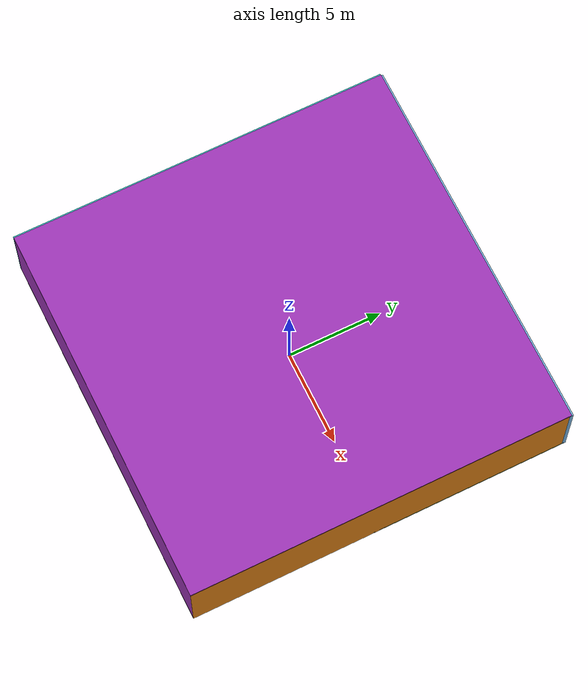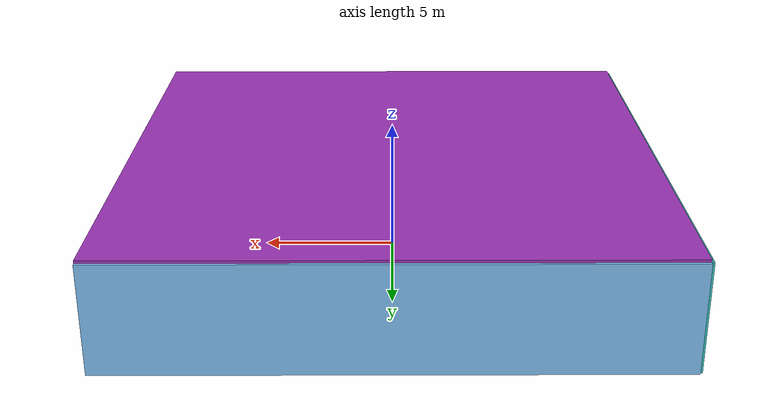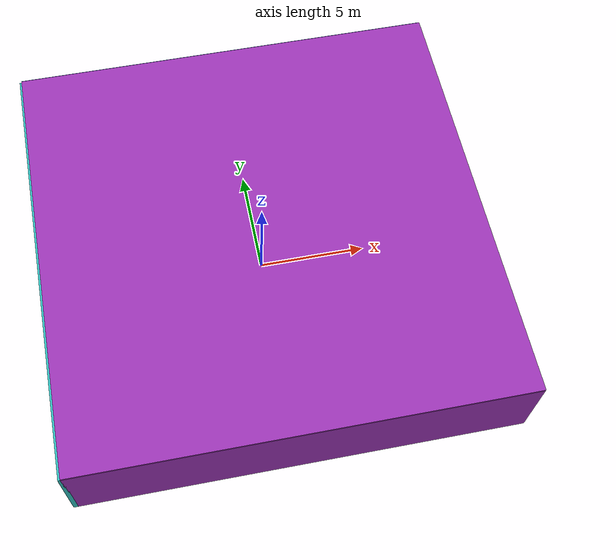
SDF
<sdf version="1.4">
 <world name="default">
  <physics type="ode">
   <max_step_size>0.001</max_step_size>
   <real_time_factor>1</real_time_factor>
   <real_time_update_rate>1000</real_time_update_rate>
   <gravity>0 0 -9.8</gravity>
  </physics>
  <scene><ambient>0.4 0.4 0.4 1</ambient><background>0.7 0.7 0.7 1</background><shadows>1</shadows></scene>
  <model name="Surrounding">
   <static>1</static>
   <link name="Ceiling">
    <collision name="Ceiling_Collision"><geometry><box><size>20 20 0.1</size></box></geometry></collision>
    <visual name="Ceiling_Visual">
     <geometry><box><size>20 20 0.1</size></box></geometry>
     <material>
      <script><uri>file://media/materials/scripts/gazebo.material</uri><name>Gazebo/Purple</name></script>
     </material>
    </visual>
    <pose>0 0 4.05 0 0 0</pose>
   </link>
   <link name="Wall_South">
    <collision name="Wall_South_Collision">
     <geometry><box><size>20 0 4</size></box></geometry>
     <pose>0 0 2 0 -0 0</pose>
    </collision>
    <visual name="Wall_South_Visual">
     <pose>0 0 2 0 -0 0</pose>
     <geometry><box><size>20 0 4</size></box></geometry>
     <material>
      <script><uri>file://media/materials/scripts/gazebo.material</uri><name>Gazebo/PurpleGlow</name></script>
     </material>
    </visual>
    <velocity_decay><linear>0</linear><angular>0</angular></velocity_decay>
    <pose>0 -10 0 0 -0 0</pose>
   </link>
   <link name="Wall_East">
    <collision name="Wall_21_Collision">
     <geometry><box><size>20 0 4</size></box></geometry>
     <pose>0 0 2 0 -0 0</pose>
    </collision>
    <visual name="Wall_21_Visual">
     <pose>0 0 2 0 -0 0</pose>
     <geometry><box><size>20 0 4</size></box></geometry>
     <material>
      <script><uri>file://media/materials/scripts/gazebo.material</uri><name>Gazebo/Orange</name></script>
     </material>
    </visual>
    <velocity_decay><linear>0</linear><angular>0</angular></velocity_decay>
    <pose>10 0 0 0 -0 1.5708</pose>
   </link>
   <link name="Wall_North">
    <collision name="Wall_22_Collision">
     <geometry><box><size>20 0.2 4</size></box></geometry>
     <pose>0 0 2 0 -0 0</pose>
    </collision>
    <visual name="Wall_22_Visual">
     <pose>0 0 2 0 -0 0</pose>
     <geometry><box><size>20 0.2 4</size></box></geometry>
     <material>
      <script><uri>file://media/materials/scripts/gazebo.material</uri><name>Gazebo/SkyBlue</name></script>
     </material>
    </visual>
    <velocity_decay><linear>0</linear><angular>0</angular></velocity_decay>
    <pose>0 10 0 0 -0 0</pose>
   </link>
   <link name="Wall_West">
    <collision name="Wall_23_Collision">
     <geometry><box><size>20 0.2 4</size></box></geometry>
     <pose>0 0 2 0 -0 0</pose>
    </collision>
    <visual name="Wall_23_Visual">
     <pose>0 0 2 0 -0 0</pose>
     <geometry><box><size>20 0.2 4</size></box></geometry>
     <material>
      <script><uri>file://media/materials/scripts/gazebo.material</uri><name>Gazebo/TurquoiseGlow</name></script>
     </material>
    </visual>
    <velocity_decay><linear>0</linear><angular>0</angular></velocity_decay>
    <pose>-10 0 0 0 0 -1.5708</pose>
   </link>
   <link name="Ground_link">
    <collision name="collision">
     <pose>0 0 .05 0 -0 0</pose>
     <geometry><box><size>20 20 0.1</size></box></geometry>
    </collision>
    <visual name="visual">
     <pose>0 0 .05 0 -0 0</pose>
     <geometry><box><size>20 20 0.1</size></box></geometry>
     <material>
      <script><uri>file://media/materials/scripts/gazebo.material</uri><name>Gazebo/GreenTransparent</name></script>
     </material>
    </visual>
   </link>
   <static>1</static>
  </model>
  <spherical_coordinates>
   <surface_model>EARTH_WGS84</surface_model>
   <latitude_deg>0</latitude_deg>
   <longitude_deg>0</longitude_deg>
   <elevation>0</elevation>
   <heading_deg>0</heading_deg>
  </spherical_coordinates>
  <light name="lightball_0" type="diffuse">
   <diffuse>0.8 0.8 0.8 1</diffuse>
   <specular>0.2 0.2 0.2 1</specular>
   <attenuation>
    <range>100</range>
    <constant>0.7</constant>
    <linear>0.01</linear>
    <quadratic>0.001</quadratic>
   </attenuation>
   <direction>-0.5 0.1 -0.9</direction>
   <pose>7.50874572396 2.40099869493 0.728731863525 0 0 0</pose>
  </light>
  <light name="lightball_1" type="diffuse">
   <diffuse>0.8 0.8 0.8 1</diffuse>
   <specular>0.2 0.2 0.2 1</specular>
   <attenuation>
    <range>100</range>
    <constant>0.7</constant>
    <linear>0.01</linear>
    <quadratic>0.001</quadratic>
   </attenuation>
   <direction>-0.5 0.1 -0.9</direction>
   <pose>8.42041786814 -1.06620378913 2.43018211893 0 0 0</pose>
  </light>
  <light name="lightball_2" type="diffuse">
   <diffuse>0.8 0.8 0.8 1</diffuse>
   <specular>0.2 0.2 0.2 1</specular>
   <attenuation>
    <range>100</range>
    <constant>0.7</constant>
    <linear>0.01</linear>
    <quadratic>0.001</quadratic>
   </attenuation>
   <direction>-0.5 0.1 -0.9</direction>
   <pose>6.03834614712 -9.11216477513 1.59048570381 0 0 0</pose>
  </light>
  <light name="lightball_3" type="diffuse">
   <diffuse>0.8 0.8 0.8 1</diffuse>
   <specular>0.2 0.2 0.2 1</specular>
   <attenuation>
    <range>100</range>
    <constant>0.7</constant>
    <linear>0.01</linear>
    <quadratic>0.001</quadratic>
   </attenuation>
   <direction>-0.5 0.1 -0.9</direction>
   <pose>3.33342826599 2.01490624117 0.673498242533 0 0 0</pose>
  </light>
  <light name="lightball_4" type="diffuse">
   <diffuse>0.8 0.8 0.8 1</diffuse>
   <specular>0.2 0.2 0.2 1</specular>
   <attenuation>
    <range>100</range>
    <constant>0.7</constant>
    <linear>0.01</linear>
    <quadratic>0.001</quadratic>
   </attenuation>
   <direction>-0.5 0.1 -0.9</direction>
   <pose>-9.49079962867 -9.10043592709 0.664721853616 0 0 0</pose>
  </light>
  <light name="lightball_5" type="diffuse">
   <diffuse>0.8 0.8 0.8 1</diffuse>
   <specular>0.2 0.2 0.2 1</specular>
   <attenuation>
    <range>100</range>
    <constant>0.7</constant>
    <linear>0.01</linear>
    <quadratic>0.001</quadratic>
   </attenuation>
   <direction>-0.5 0.1 -0.9</direction>
   <pose>-1.75243873136 7.11573759396 1.11462719228 0 0 0</pose>
  </light>
  <light name="lightball_6" type="diffuse">
   <diffuse>0.8 0.8 0.8 1</diffuse>
   <specular>0.2 0.2 0.2 1</specular>
   <attenuation>
    <range>100</range>
    <constant>0.7</constant>
    <linear>0.01</linear>
    <quadratic>0.001</quadratic>
   </attenuation>
   <direction>-0.5 0.1 -0.9</direction>
   <pose>9.09290145622 -3.73274689602 1.77305055254 0 0 0</pose>
  </light>
  <light name="lightball_7" type="diffuse">
   <diffuse>0.8 0.8 0.8 1</diffuse>
   <specular>0.2 0.2 0.2 1</specular>
   <attenuation>
    <range>100</range>
    <constant>0.7</constant>
    <linear>0.01</linear>
    <quadratic>0.001</quadratic>
   </attenuation>
   <direction>-0.5 0.1 -0.9</direction>
   <pose>2.9964271651 1.67166936596 1.52813414166 0 0 0</pose>
  </light>
  <light name="lightball_8" type="diffuse">
   <diffuse>0.8 0.8 0.8 1</diffuse>
   <specular>0.2 0.2 0.2 1</specular>
   <attenuation>
    <range>100</range>
    <constant>0.7</constant>
    <linear>0.01</linear>
    <quadratic>0.001</quadratic>
   </attenuation>
   <direction>-0.5 0.1 -0.9</direction>
   <pose>-4.99730765422 6.40093634501 1.6081948336 0 0 0</pose>
  </light>
  <light name="lightball_9" type="diffuse">
   <diffuse>0.8 0.8 0.8 1</diffuse>
   <specular>0.2 0.2 0.2 1</specular>
   <attenuation>
    <range>100</range>
    <constant>0.7</constant>
    <linear>0.01</linear>
    <quadratic>0.001</quadratic>
   </attenuation>
   <direction>-0.5 0.1 -0.9</direction>
   <pose>-6.43200339646 7.90157575689 2.41365954107 0 0 0</pose>
  </light>
  <include>
   <uri>model://robocup_3Dsim_goal</uri>
   <pose>-4.26099029629 -0.916659943168 0 0 0 2.27350653782</pose>
  </include>
  <include>
   <uri>model://textured_shapes</uri>
   <pose>-1.41119336106 -7.79148302675 0 0 0 2.42450619841</pose>
  </include>
  <include>
   <uri>model://construction_cone</uri>
   <pose>2.10149644347 -7.50829597998 0 0 0 0.834736895812</pose>
  </include>
  <include>
   <uri>model://textured_shapes</uri>
   <pose>4.46024216547 1.84658693866 0 0 0 0.475782125802</pose>
  </include>
  <include><uri>model://cabinet</uri><pose>8.1159412553 -7.70084988079 0 0 0 2.99718474323</pose></include>
  <include>
   <uri>model://construction_cone</uri>
   <pose>8.28956890083 4.37078909684 0 0 0 2.5389976283</pose>
  </include>
 </world>
</sdf>

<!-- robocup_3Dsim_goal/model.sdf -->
<sdf version="1.5">
  <model name="robocup_3d_goal">
    <static>true</static>
    <link name="left_post">
      <pose>0 1.05 0.45 0 0 0</pose>
      <collision name="collision">
        <geometry>
          <cylinder>
            <radius>0.05</radius>
            <length>0.9</length>
          </cylinder>
        </geometry>
      </collision>
      <visual name="visual">
        <geometry>
          <cylinder>
            <radius>0.05</radius>
            <length>0.9</length>
          </cylinder>
        </geometry>
        <material>
          <script>
            <uri>file://media/materials/scripts/gazebo.material</uri>
            <name>Gazebo/ZincYellow</name>
          </script>
        </material>
      </visual>
    </link>
    <link name="left_support_horiz_lower">
      <pose>0.30 1.05 0.01 0 0 0</pose>
      <collision name="collision">
        <geometry>
          <box>
            <size>0.50 0.02 0.02</size>
          </box>
        </geometry>
      </collision>
      <visual name="visual">
        <geometry>
          <box>
            <size>0.50 0.02 0.02</size>
          </box>
        </geometry>
        <material>
          <script>
            <uri>file://media/materials/scripts/gazebo.material</uri>
            <name>Gazebo/White</name>
          </script>
        </material>
      </visual>
    </link>
    <link name="left_support_horiz_upper">
      <pose>0.30 1.05 0.79 0 0 0</pose>
      <collision name="collision">
        <geometry>
          <box>
            <size>0.50 0.02 0.02</size>
          </box>
        </geometry>
      </collision>
      <visual name="visual">
        <geometry>
          <box>
            <size>0.50 0.02 0.02</size>
          </box>
        </geometry>
        <material>
          <script>
            <uri>file://media/materials/scripts/gazebo.material</uri>
            <name>Gazebo/White</name>
          </script>
        </material>
      </visual>
    </link>
    <link name="left_support_vertical">
      <pose>0.56 1.05 0.4 0 1.5708 0</pose>
      <collision name="collision">
        <geometry>
          <box>
            <size>0.80 0.02 0.02</size>
          </box>
        </geometry>
      </collision>
      <visual name="visual">
        <geometry>
          <box>
            <size>0.80 0.02 0.02</size>
          </box>
        </geometry>
        <material>
          <script>
            <uri>file://media/materials/scripts/gazebo.material</uri>
            <name>Gazebo/White</name>
          </script>
        </material>
      </visual>
    </link>
    <link name="right_support_horiz_lower">
      <pose>0.30 -1.05 0.01 0 0 0</pose>
      <collision name="collision">
        <geometry>
          <box>
            <size>0.50 0.02 0.02</size>
          </box>
        </geometry>
      </collision>
      <visual name="visual">
        <geometry>
          <box>
            <size>0.50 0.02 0.02</size>
          </box>
        </geometry>
        <material>
          <script>
            <uri>file://media/materials/scripts/gazebo.material</uri>
            <name>Gazebo/White</name>
          </script>
        </material>
      </visual>
    </link>
    <link name="right_support_horiz_upper">
      <pose>0.30 -1.05 0.79 0 0 0</pose>
      <collision name="collision">
        <geometry>
          <box>
            <size>0.50 0.02 0.02</size>
          </box>
        </geometry>
      </collision>
      <visual name="visual">
        <geometry>
          <box>
            <size>0.50 0.02 0.02</size>
          </box>
        </geometry>
        <material>
          <script>
            <uri>file://media/materials/scripts/gazebo.material</uri>
            <name>Gazebo/White</name>
          </script>
        </material>
      </visual>
    </link>
    <link name="right_support_vertical">
      <pose>0.56 -1.05 0.4 0 1.5708 0</pose>
      <collision name="collision">
        <geometry>
          <box>
            <size>0.80 0.02 0.02</size>
          </box>
        </geometry>
      </collision>
      <visual name="visual">
        <geometry>
          <box>
            <size>0.80 0.02 0.02</size>
          </box>
        </geometry>
        <material>
          <script>
            <uri>file://media/materials/scripts/gazebo.material</uri>
            <name>Gazebo/White</name>
          </script>
        </material>
      </visual>
    </link>
    <link name="center_support_horiz_lower">
      <pose>0.56 0 0.01 0 1.5708 0</pose>
      <collision name="collision">
        <geometry>
          <box>
            <size>0.02 2.08 0.02</size>
          </box>
        </geometry>
      </collision>
      <visual name="visual">
        <geometry>
          <box>
            <size>0.02 2.08 0.02</size>
          </box>
        </geometry>
        <material>
          <script>
            <uri>file://media/materials/scripts/gazebo.material</uri>
            <name>Gazebo/White</name>
          </script>
        </material>
      </visual>
    </link>
    <link name="center_support_horiz_upper">
      <pose>0.56 0 0.79 0 1.5708 0</pose>
      <collision name="collision">
        <geometry>
          <box>
            <size>0.02 2.08 0.02</size>
          </box>
        </geometry>
      </collision>
      <visual name="visual">
        <geometry>
          <box>
            <size>0.02 2.08 0.02</size>
          </box>
        </geometry>
        <material>
          <script>
            <uri>file://media/materials/scripts/gazebo.material</uri>
            <name>Gazebo/White</name>
          </script>
        </material>
      </visual>
    </link>
    <link name="right_post">
      <pose>0 -1.05 0.45 0 0 0</pose>
      <collision name="collision">
        <geometry>
          <cylinder>
            <radius>0.05</radius>
            <length>0.9</length>
          </cylinder>
        </geometry>
      </collision>
      <visual name="visual">
        <geometry>
          <cylinder>
            <radius>0.05</radius>
            <length>0.9</length>
          </cylinder>
        </geometry>
        <material>
          <script>
            <uri>file://media/materials/scripts/gazebo.material</uri>
            <name>Gazebo/ZincYellow</name>
          </script>
        </material>
      </visual>
    </link>
    <link name="crossbar">
      <pose>0 0 0.85 1.57 1.57 0</pose>
      <collision name="collision">
        <geometry>
          <cylinder>
            <radius>0.05</radius>
            <length>2.0</length>
          </cylinder>
        </geometry>
      </collision>
      <visual name="visual">
        <geometry>
          <cylinder>
            <radius>0.05</radius>
            <length>2.0</length>
          </cylinder>
        </geometry>
        <material>
          <script>
            <uri>file://media/materials/scripts/gazebo.material</uri>
            <name>Gazebo/ZincYellow</name>
          </script>
        </material>
      </visual>
    </link>
    <link name="center_net">
      <pose>0.56 0 0.40 0 0 0</pose>
      <collision name="collision">
        <geometry>
          <box>
            <size>0.01 2.1 0.80</size>
          </box>
        </geometry>
      </collision>
      <visual name="visual">
        <geometry>
          <box>
            <size>0.01 2.1 0.80</size>
          </box>
        </geometry>
        <material>
          <script>
            <uri>model://../model_source/models/robocup09_spl_field/materials/scripts/</uri>
            <uri>model://../model_source/models/robocup09_spl_field/materials/textures/</uri>
            <name>RoboCup/Net</name>
          </script>
        </material>
      </visual>
    </link>
    <link name="left_net">
      <pose>0.30 1.05 0.40 0 0 0</pose>
      <collision name="collision">
        <geometry>
          <box>
            <size>0.50 0.01 0.76</size>
          </box>
        </geometry>
      </collision>
      <visual name="visual">
        <geometry>
          <box>
            <size>0.50 0.01 0.76</size>
          </box>
        </geometry>
        <material>
          <script>
            <uri>model://../model_source/models/robocup09_spl_field/materials/scripts/</uri>
            <uri>model://../model_source/models/robocup09_spl_field/materials/textures/</uri>
            <name>RoboCup/Net</name>
          </script>
        </material>
      </visual>
    </link>
    <link name="right_net">
      <pose>0.30 -1.05 0.40 0 0 0</pose>
      <collision name="collision">
        <geometry>
          <box>
            <size>0.50 0.01 0.76</size>
          </box>
        </geometry>
      </collision>
      <visual name="visual">
        <geometry>
          <box>
            <size>0.50 0.01 0.76</size>
          </box>
        </geometry>
        <material>
          <script>
            <uri>model://../model_source/models/robocup09_spl_field/materials/scripts/</uri>
            <uri>model://../model_source/models/robocup09_spl_field/materials/textures/</uri>
            <name>RoboCup/Net</name>
          </script>
        </material>
      </visual>
    </link>
  </model>
</sdf>

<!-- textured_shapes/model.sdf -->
<sdf version="1.6">
  <model name="textured_shapes">
    <pose>0 0 0.5 0 0 0</pose>
    <link name="box">
      <pose>0 -1.5 0 0 0 0</pose>
      <collision name="collision">
        <geometry>
          <box>
            <size>1 1 1</size>
          </box>
        </geometry>
      </collision>
      <visual name="visual">
        <geometry>
          <box>
            <size>1 1 1</size>
          </box>
        </geometry>
        <material>
          <script>
            <uri>model://../model_source/models/textured_shapes/materials/scripts</uri>
            <uri>model://../model_source/models/textured_shapes/materials/textures</uri>
            <name>TexturedShape/Squares</name>
          </script>
        </material>
      </visual>
    </link>
    <link name="sphere">
      <collision name="collision">
        <geometry>
          <sphere>
            <radius>0.5</radius>
          </sphere>
        </geometry>
      </collision>
      <visual name="visual">
        <geometry>
          <sphere>
            <radius>0.5</radius>
          </sphere>
        </geometry>
        <material>
          <script>
            <uri>model://../model_source/models/textured_shapes/materials/scripts</uri>
            <uri>model://../model_source/models/textured_shapes/materials/textures</uri>
            <name>TexturedShape/Squares</name>
          </script>
        </material>
      </visual>
    </link>
    <link name="cylinder">
      <pose>0 1.5 0 0 0 0</pose>
      <collision name="collision">
        <geometry>
          <cylinder>
            <radius>0.5</radius>
            <length>1</length>
          </cylinder>
        </geometry>
      </collision>
      <visual name="visual">
        <geometry>
          <cylinder>
            <radius>0.5</radius>
            <length>1</length>
          </cylinder>
        </geometry>
        <material>
          <script>
            <uri>model://../model_source/models/textured_shapes/materials/scripts</uri>
            <uri>model://../model_source/models/textured_shapes/materials/textures</uri>
            <name>TexturedShape/Squares</name>
          </script>
        </material>
      </visual>
    </link>
  </model>
</sdf>

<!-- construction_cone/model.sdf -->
<sdf version="1.5">
  <model name="Construction Cone">
    <link name="link">
      <collision name="collision">
        <geometry>
          <mesh>
            <scale>10 10 10</scale>
            <uri>file://isr-testbed/construction_cone/meshes/construction_cone.dae</uri>
          </mesh>
        </geometry>
      </collision>
      <visual name="visual">
        <geometry>
          <mesh>
            <scale>10 10 10</scale>
            <uri>file://isr-testbed/construction_cone/meshes/construction_cone.dae</uri>
          </mesh>
        </geometry>
      </visual>
    </link>
  </model>
</sdf>

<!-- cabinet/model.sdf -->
<sdf version="1.5">
  <model name="cabinet">
    <static>true</static>
    <link name="cabinet_bottom_plate">
      <inertial>
        <pose>0 0 -1 0 0 0</pose>
        <inertia>
          <ixx>2.050000</ixx>
          <ixy>0</ixy>
          <ixz>0</ixz>
          <iyy>2.050000</iyy>
          <iyz>0</iyz>
          <izz>2.050000</izz>
        </inertia>
        <mass>25.000000</mass>
      </inertial>
      <collision name="cabinet_bottom_plate_geom">
        <pose>0 0 0.010000 0 0 0</pose>
        <geometry>
          <box>
            <size>0.450000 0.450000 0.020000</size>
          </box>
        </geometry>
      </collision>
      <visual name="cabinet_bottom_plate_geom_visual">
        <pose>0 0 0.010000 0 0 0</pose>
        <geometry>
          <box>
            <size>0.450000 0.450000 0.020000</size>
          </box>
        </geometry>
        <material>
          <script>
            <uri>model://media/materials/scripts/gazebo.material</uri>
            <name>Gazebo/Wood</name>
          </script>
        </material>
      </visual>
      <collision name="cabinet_bottom_plate_geom_cabinet_back_plate">
        <pose>0.235000 0 0.510000 0 0 0</pose>
        <geometry>
          <box>
            <size>0.020000 0.450000 1.020000</size>
          </box>
        </geometry>
      </collision>
      <visual name="cabinet_bottom_plate_geom_cabinet_back_plate_visual">
        <pose>0.235000 0 0.510000 0 0 0</pose>
        <geometry>
          <box>
            <size>0.020000 0.450000 1.020000</size>
          </box>
        </geometry>
        <material>
          <script>
            <uri>model://media/materials/scripts/gazebo.material</uri>
            <name>Gazebo/Wood</name>
          </script>
        </material>
      </visual>
      <collision name="cabinet_bottom_plate_geom_cabinet_left_plate">
        <pose>0 0.235000 0.510000 0 0 0</pose>
        <geometry>
          <box>
            <size>0.450000 0.020000 1.020000</size>
          </box>
        </geometry>
      </collision>
      <visual name="cabinet_bottom_plate_geom_cabinet_left_plate_visual">
        <pose>0 0.235000 0.510000 0 0 0</pose>
        <geometry>
          <box>
            <size>0.450000 0.020000 1.020000</size>
          </box>
        </geometry>
        <material>
          <script>
            <uri>model://media/materials/scripts/gazebo.material</uri>
            <name>Gazebo/Wood</name>
          </script>
        </material>
      </visual>
      <collision name="cabinet_bottom_plate_geom_cabinet_middle_plate">
        <pose>0 0 0.510000 0 0 0</pose>
        <geometry>
          <box>
            <size>0.450000 0.450000 0.020000</size>
          </box>
        </geometry>
      </collision>
      <visual name="cabinet_bottom_plate_geom_cabinet_middle_plate_visual">
        <pose>0 0 0.510000 0 0 0</pose>
        <geometry>
          <box>
            <size>0.450000 0.450000 0.020000</size>
          </box>
        </geometry>
        <material>
          <script>
            <uri>model://media/materials/scripts/gazebo.material</uri>
            <name>Gazebo/Wood</name>
          </script>
        </material>
      </visual>
      <collision name="cabinet_bottom_plate_geom_cabinet_right_plate">
        <pose>0 -0.235000 0.510000 0 0 0</pose>
        <geometry>
          <box>
            <size>0.450000 0.020000 1.020000</size>
          </box>
        </geometry>
      </collision>
      <visual name="cabinet_bottom_plate_geom_cabinet_right_plate_visual">
        <pose>0 -0.235000 0.510000 0 0 0</pose>
        <geometry>
          <box>
            <size>0.450000 0.020000 1.020000</size>
          </box>
        </geometry>
        <material>
          <script>
            <uri>model://media/materials/scripts/gazebo.material</uri>
            <name>Gazebo/Wood</name>
          </script>
        </material>
      </visual>
      <collision name="cabinet_bottom_plate_geom_cabinet_top_plate">
        <pose>0 0 1.010000 0 0 0</pose>
        <geometry>
          <box>
            <size>0.450000 0.450000 0.020000</size>
          </box>
        </geometry>
      </collision>
      <visual name="cabinet_bottom_plate_geom_cabinet_top_plate_visual">
        <pose>0 0 1.010000 0 0 0</pose>
        <geometry>
          <box>
            <size>0.450000 0.450000 0.020000</size>
          </box>
        </geometry>
        <material>
          <script>
            <uri>model://media/materials/scripts/gazebo.material</uri>
            <name>Gazebo/Wood</name>
          </script>
        </material>
      </visual>
    </link>
  </model>
</sdf>
